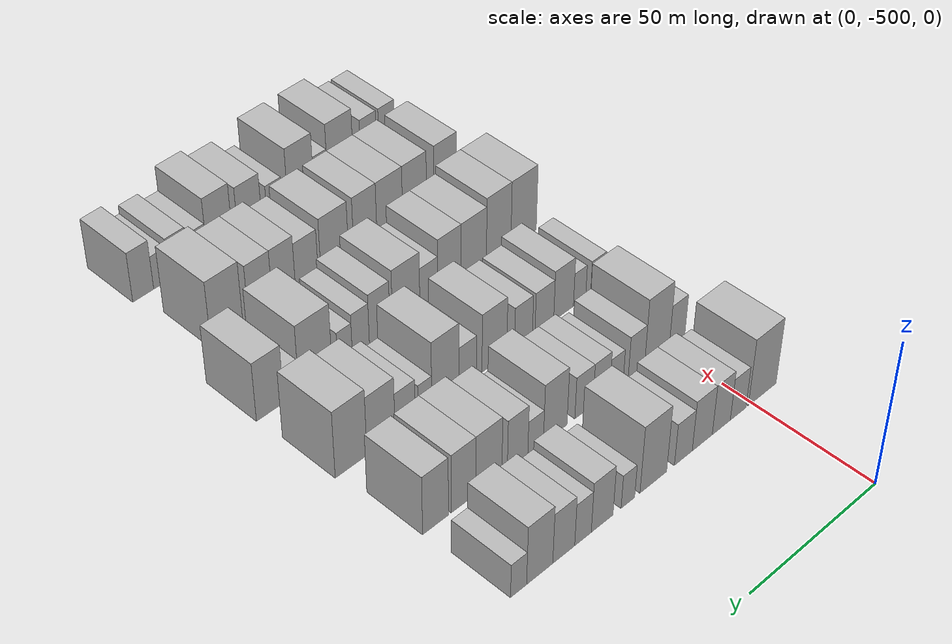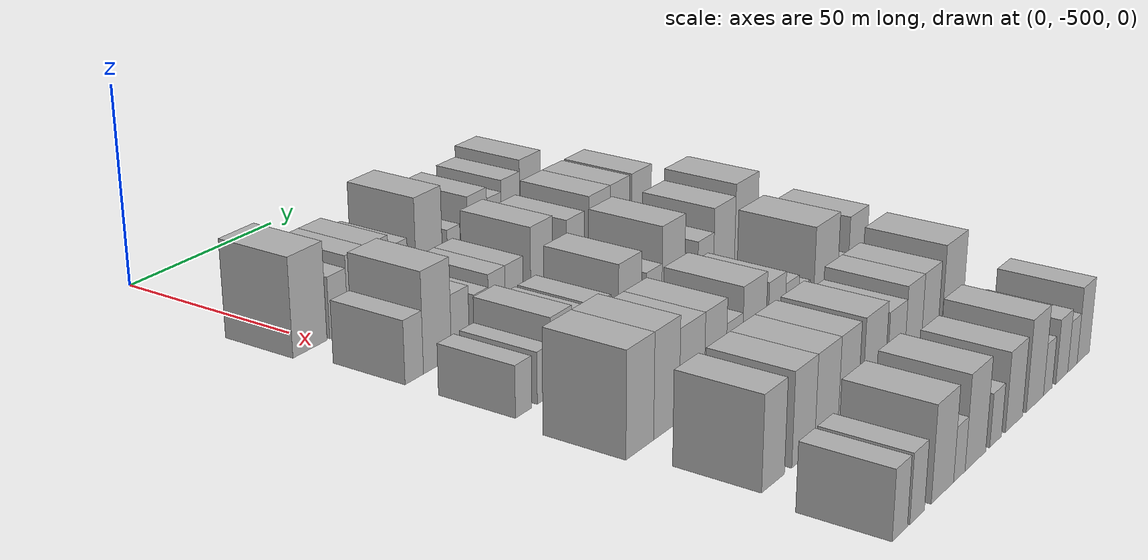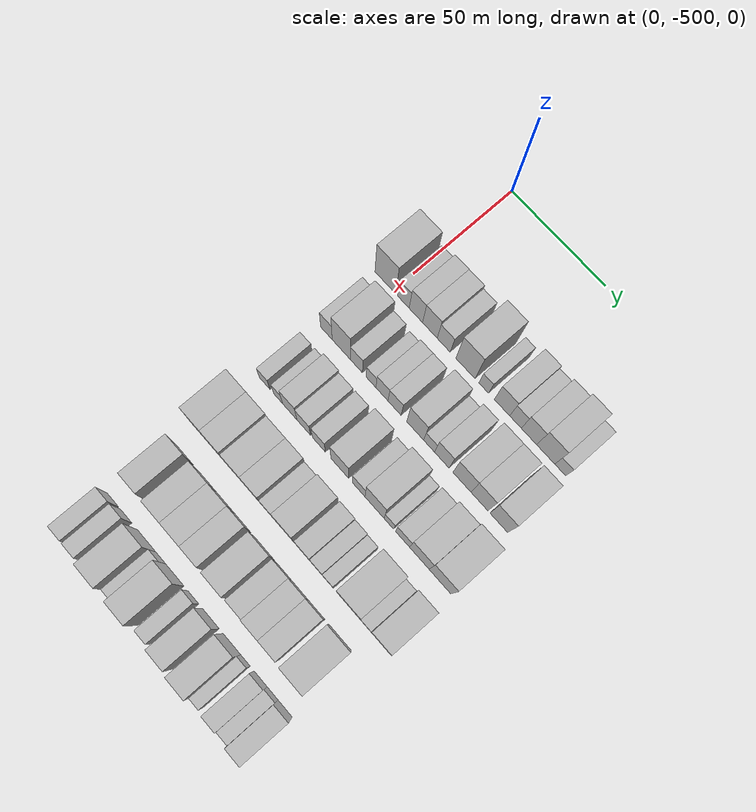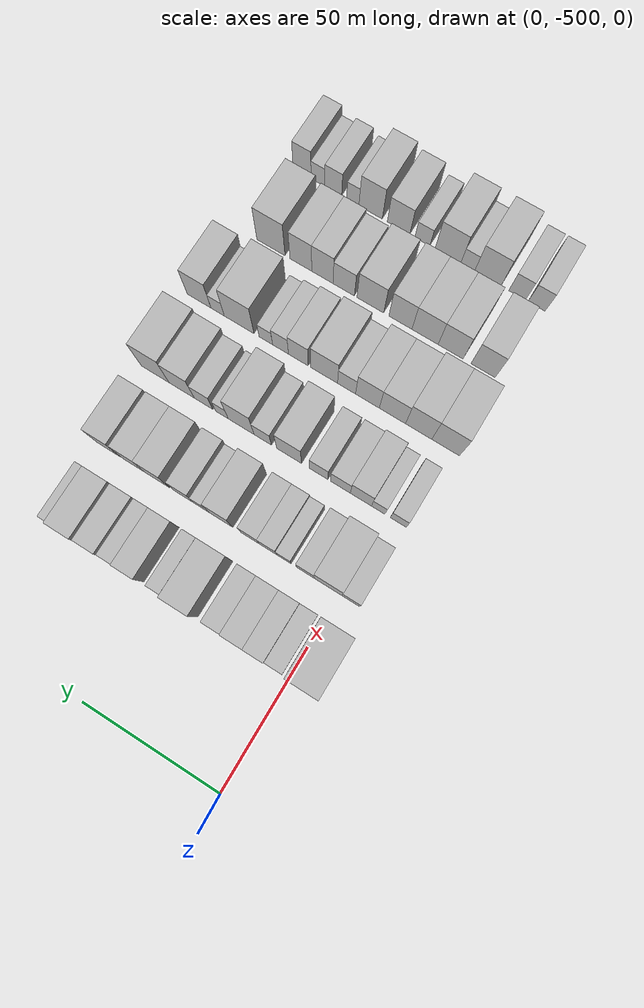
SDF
<sdf version="1.6">
 <world name="default">
  <model name="building_1">
   <static>1</static>
   <pose>50.0000 -504.2611 0 0.000000 0.000000 0.000000</pose>
   <link name="link">
    <pose>0 0 12.00 0 0 0</pose>
    <collision name="collision"><geometry><box><size>20.0000 11.4779 24.0000</size></box></geometry></collision>
    <visual name="visual">
     <cast_shadows>0</cast_shadows>
     <geometry><box><size>20.0000 11.4779 24.0000</size></box></geometry>
     <material>
      <script>
       <uri>model://HANNAS_wall/materials/scripts</uri>
       <uri>model://HANNAS_wall/materials/textures</uri>
       <name>vrc/HANNAS_wall</name>
      </script>
     </material>
    </visual>
   </link>
  </model>
  <model name="building_2">
   <static>1</static>
   <pose>50.0000 -494.3358 0 0.000000 0.000000 0.000000</pose>
   <link name="link">
    <pose>0 0 7.50 0 0 0</pose>
    <collision name="collision"><geometry><box><size>20.0000 6.3727 15.0000</size></box></geometry></collision>
    <visual name="visual">
     <cast_shadows>0</cast_shadows>
     <geometry><box><size>20.0000 6.3727 15.0000</size></box></geometry>
     <material>
      <script>
       <uri>model://HANNAS_wall/materials/scripts</uri>
       <uri>model://HANNAS_wall/materials/textures</uri>
       <name>vrc/HANNAS_wall</name>
      </script>
     </material>
    </visual>
   </link>
  </model>
  <model name="building_3">
   <static>1</static>
   <pose>50.0000 -487.5108 0 0.000000 0.000000 0.000000</pose>
   <link name="link">
    <pose>0 0 9.00 0 0 0</pose>
    <collision name="collision"><geometry><box><size>20.0000 7.2772 18.0000</size></box></geometry></collision>
    <visual name="visual">
     <cast_shadows>0</cast_shadows>
     <geometry><box><size>20.0000 7.2772 18.0000</size></box></geometry>
     <material>
      <script>
       <uri>model://HANNAS_wall/materials/scripts</uri>
       <uri>model://HANNAS_wall/materials/textures</uri>
       <name>vrc/HANNAS_wall</name>
      </script>
     </material>
    </visual>
   </link>
  </model>
  <model name="building_4">
   <static>1</static>
   <pose>50.0000 -479.9016 0 0.000000 0.000000 0.000000</pose>
   <link name="link">
    <pose>0 0 9.00 0 0 0</pose>
    <collision name="collision"><geometry><box><size>20.0000 7.9412 18.0000</size></box></geometry></collision>
    <visual name="visual">
     <cast_shadows>0</cast_shadows>
     <geometry><box><size>20.0000 7.9412 18.0000</size></box></geometry>
     <material>
      <script>
       <uri>model://HANNAS_wall/materials/scripts</uri>
       <uri>model://HANNAS_wall/materials/textures</uri>
       <name>vrc/HANNAS_wall</name>
      </script>
     </material>
    </visual>
   </link>
  </model>
  <model name="building_5">
   <static>1</static>
   <pose>50.0000 -472.4386 0 0.000000 0.000000 0.000000</pose>
   <link name="link">
    <pose>0 0 7.50 0 0 0</pose>
    <collision name="collision"><geometry><box><size>20.0000 6.9848 15.0000</size></box></geometry></collision>
    <visual name="visual">
     <cast_shadows>0</cast_shadows>
     <geometry><box><size>20.0000 6.9848 15.0000</size></box></geometry>
     <material>
      <script>
       <uri>model://HANNAS_wall/materials/scripts</uri>
       <uri>model://HANNAS_wall/materials/textures</uri>
       <name>vrc/HANNAS_wall</name>
      </script>
     </material>
    </visual>
   </link>
  </model>
  <model name="building_6">
   <static>1</static>
   <pose>50.0000 -460.8324 0 0.000000 0.000000 0.000000</pose>
   <link name="link">
    <pose>0 0 12.00 0 0 0</pose>
    <collision name="collision"><geometry><box><size>20.0000 10.2276 24.0000</size></box></geometry></collision>
    <visual name="visual">
     <cast_shadows>0</cast_shadows>
     <geometry><box><size>20.0000 10.2276 24.0000</size></box></geometry>
     <material>
      <script>
       <uri>model://HANNAS_wall/materials/scripts</uri>
       <uri>model://HANNAS_wall/materials/textures</uri>
       <name>vrc/HANNAS_wall</name>
      </script>
     </material>
    </visual>
   </link>
  </model>
  <model name="building_7">
   <static>1</static>
   <pose>50.0000 -451.1623 0 0.000000 0.000000 0.000000</pose>
   <link name="link">
    <pose>0 0 6.00 0 0 0</pose>
    <collision name="collision"><geometry><box><size>20.0000 5.1126 12.0000</size></box></geometry></collision>
    <visual name="visual">
     <cast_shadows>0</cast_shadows>
     <geometry><box><size>20.0000 5.1126 12.0000</size></box></geometry>
     <material>
      <script>
       <uri>model://HANNAS_wall/materials/scripts</uri>
       <uri>model://HANNAS_wall/materials/textures</uri>
       <name>vrc/HANNAS_wall</name>
      </script>
     </material>
    </visual>
   </link>
  </model>
  <model name="building_8">
   <static>1</static>
   <pose>50.0000 -441.5834 0 0.000000 0.000000 0.000000</pose>
   <link name="link">
    <pose>0 0 9.00 0 0 0</pose>
    <collision name="collision"><geometry><box><size>20.0000 8.0451 18.0000</size></box></geometry></collision>
    <visual name="visual">
     <cast_shadows>0</cast_shadows>
     <geometry><box><size>20.0000 8.0451 18.0000</size></box></geometry>
     <material>
      <script>
       <uri>model://HANNAS_wall/materials/scripts</uri>
       <uri>model://HANNAS_wall/materials/textures</uri>
       <name>vrc/HANNAS_wall</name>
      </script>
     </material>
    </visual>
   </link>
  </model>
  <model name="building_9">
   <static>1</static>
   <pose>50.0000 -434.5429 0 0.000000 0.000000 0.000000</pose>
   <link name="link">
    <pose>0 0 7.50 0 0 0</pose>
    <collision name="collision"><geometry><box><size>20.0000 6.0360 15.0000</size></box></geometry></collision>
    <visual name="visual">
     <cast_shadows>0</cast_shadows>
     <geometry><box><size>20.0000 6.0360 15.0000</size></box></geometry>
     <material>
      <script>
       <uri>model://HANNAS_wall/materials/scripts</uri>
       <uri>model://HANNAS_wall/materials/textures</uri>
       <name>vrc/HANNAS_wall</name>
      </script>
     </material>
    </visual>
   </link>
  </model>
  <model name="building_10">
   <static>1</static>
   <pose>50.0000 -427.5865 0 0.000000 0.000000 0.000000</pose>
   <link name="link">
    <pose>0 0 9.00 0 0 0</pose>
    <collision name="collision"><geometry><box><size>20.0000 7.8767 18.0000</size></box></geometry></collision>
    <visual name="visual">
     <cast_shadows>0</cast_shadows>
     <geometry><box><size>20.0000 7.8767 18.0000</size></box></geometry>
     <material>
      <script>
       <uri>model://HANNAS_wall/materials/scripts</uri>
       <uri>model://HANNAS_wall/materials/textures</uri>
       <name>vrc/HANNAS_wall</name>
      </script>
     </material>
    </visual>
   </link>
  </model>
  <model name="building_11">
   <static>1</static>
   <pose>50.0000 -419.0270 0 0.000000 0.000000 0.000000</pose>
   <link name="link">
    <pose>0 0 10.50 0 0 0</pose>
    <collision name="collision"><geometry><box><size>20.0000 9.2422 21.0000</size></box></geometry></collision>
    <visual name="visual">
     <cast_shadows>0</cast_shadows>
     <geometry><box><size>20.0000 9.2422 21.0000</size></box></geometry>
     <material>
      <script>
       <uri>model://HANNAS_wall/materials/scripts</uri>
       <uri>model://HANNAS_wall/materials/textures</uri>
       <name>vrc/HANNAS_wall</name>
      </script>
     </material>
    </visual>
   </link>
  </model>
  <model name="building_12">
   <static>1</static>
   <pose>50.0000 -411.6132 0 0.000000 0.000000 0.000000</pose>
   <link name="link">
    <pose>0 0 6.00 0 0 0</pose>
    <collision name="collision"><geometry><box><size>20.0000 5.5854 12.0000</size></box></geometry></collision>
    <visual name="visual">
     <cast_shadows>0</cast_shadows>
     <geometry><box><size>20.0000 5.5854 12.0000</size></box></geometry>
     <material>
      <script>
       <uri>model://HANNAS_wall/materials/scripts</uri>
       <uri>model://HANNAS_wall/materials/textures</uri>
       <name>vrc/HANNAS_wall</name>
      </script>
     </material>
    </visual>
   </link>
  </model>
  <model name="building_120">
   <static>1</static>
   <pose>79.0000 -503.7935 0 0.000000 0.000000 0.000000</pose>
   <link name="link">
    <pose>0 0 7.50 0 0 0</pose>
    <collision name="collision"><geometry><box><size>20.0000 6.4129 15.0000</size></box></geometry></collision>
    <visual name="visual">
     <cast_shadows>0</cast_shadows>
     <geometry><box><size>20.0000 6.4129 15.0000</size></box></geometry>
     <material>
      <script>
       <uri>model://HANNAS_wall/materials/scripts</uri>
       <uri>model://HANNAS_wall/materials/textures</uri>
       <name>vrc/HANNAS_wall</name>
      </script>
     </material>
    </visual>
   </link>
  </model>
  <model name="building_121">
   <static>1</static>
   <pose>79.0000 -495.5672 0 0.000000 0.000000 0.000000</pose>
   <link name="link">
    <pose>0 0 12.00 0 0 0</pose>
    <collision name="collision"><geometry><box><size>20.0000 10.0397 24.0000</size></box></geometry></collision>
    <visual name="visual">
     <cast_shadows>0</cast_shadows>
     <geometry><box><size>20.0000 10.0397 24.0000</size></box></geometry>
     <material>
      <script>
       <uri>model://HANNAS_wall/materials/scripts</uri>
       <uri>model://HANNAS_wall/materials/textures</uri>
       <name>vrc/HANNAS_wall</name>
      </script>
     </material>
    </visual>
   </link>
  </model>
  <model name="building_122">
   <static>1</static>
   <pose>79.0000 -487.2690 0 0.000000 0.000000 0.000000</pose>
   <link name="link">
    <pose>0 0 7.50 0 0 0</pose>
    <collision name="collision"><geometry><box><size>20.0000 6.5568 15.0000</size></box></geometry></collision>
    <visual name="visual">
     <cast_shadows>0</cast_shadows>
     <geometry><box><size>20.0000 6.5568 15.0000</size></box></geometry>
     <material>
      <script>
       <uri>model://HANNAS_wall/materials/scripts</uri>
       <uri>model://HANNAS_wall/materials/textures</uri>
       <name>vrc/HANNAS_wall</name>
      </script>
     </material>
    </visual>
   </link>
  </model>
  <model name="building_123">
   <static>1</static>
   <pose>79.0000 -479.3188 0 0.000000 0.000000 0.000000</pose>
   <link name="link">
    <pose>0 0 6.00 0 0 0</pose>
    <collision name="collision"><geometry><box><size>20.0000 5.3437 12.0000</size></box></geometry></collision>
    <visual name="visual">
     <cast_shadows>0</cast_shadows>
     <geometry><box><size>20.0000 5.3437 12.0000</size></box></geometry>
     <material>
      <script>
       <uri>model://HANNAS_wall/materials/scripts</uri>
       <uri>model://HANNAS_wall/materials/textures</uri>
       <name>vrc/HANNAS_wall</name>
      </script>
     </material>
    </visual>
   </link>
  </model>
  <model name="building_124">
   <static>1</static>
   <pose>79.0000 -473.3937 0 0.000000 0.000000 0.000000</pose>
   <link name="link">
    <pose>0 0 7.50 0 0 0</pose>
    <collision name="collision"><geometry><box><size>20.0000 6.5066 15.0000</size></box></geometry></collision>
    <visual name="visual">
     <cast_shadows>0</cast_shadows>
     <geometry><box><size>20.0000 6.5066 15.0000</size></box></geometry>
     <material>
      <script>
       <uri>model://HANNAS_wall/materials/scripts</uri>
       <uri>model://HANNAS_wall/materials/textures</uri>
       <name>vrc/HANNAS_wall</name>
      </script>
     </material>
    </visual>
   </link>
  </model>
  <model name="building_125">
   <static>1</static>
   <pose>79.0000 -466.6389 0 0.000000 0.000000 0.000000</pose>
   <link name="link">
    <pose>0 0 7.50 0 0 0</pose>
    <collision name="collision"><geometry><box><size>20.0000 7.0029 15.0000</size></box></geometry></collision>
    <visual name="visual">
     <cast_shadows>0</cast_shadows>
     <geometry><box><size>20.0000 7.0029 15.0000</size></box></geometry>
     <material>
      <script>
       <uri>model://HANNAS_wall/materials/scripts</uri>
       <uri>model://HANNAS_wall/materials/textures</uri>
       <name>vrc/HANNAS_wall</name>
      </script>
     </material>
    </visual>
   </link>
  </model>
  <model name="building_126">
   <static>1</static>
   <pose>79.0000 -455.6709 0 0.000000 0.000000 0.000000</pose>
   <link name="link">
    <pose>0 0 10.50 0 0 0</pose>
    <collision name="collision"><geometry><box><size>20.0000 8.9331 21.0000</size></box></geometry></collision>
    <visual name="visual">
     <cast_shadows>0</cast_shadows>
     <geometry><box><size>20.0000 8.9331 21.0000</size></box></geometry>
     <material>
      <script>
       <uri>model://HANNAS_wall/materials/scripts</uri>
       <uri>model://HANNAS_wall/materials/textures</uri>
       <name>vrc/HANNAS_wall</name>
      </script>
     </material>
    </visual>
   </link>
  </model>
  <model name="building_127">
   <static>1</static>
   <pose>79.0000 -448.3050 0 0.000000 0.000000 0.000000</pose>
   <link name="link">
    <pose>0 0 6.00 0 0 0</pose>
    <collision name="collision"><geometry><box><size>20.0000 5.7987 12.0000</size></box></geometry></collision>
    <visual name="visual">
     <cast_shadows>0</cast_shadows>
     <geometry><box><size>20.0000 5.7987 12.0000</size></box></geometry>
     <material>
      <script>
       <uri>model://HANNAS_wall/materials/scripts</uri>
       <uri>model://HANNAS_wall/materials/textures</uri>
       <name>vrc/HANNAS_wall</name>
      </script>
     </material>
    </visual>
   </link>
  </model>
  <model name="building_128">
   <static>1</static>
   <pose>79.0000 -441.6276 0 0.000000 0.000000 0.000000</pose>
   <link name="link">
    <pose>0 0 9.00 0 0 0</pose>
    <collision name="collision"><geometry><box><size>20.0000 7.5559 18.0000</size></box></geometry></collision>
    <visual name="visual">
     <cast_shadows>0</cast_shadows>
     <geometry><box><size>20.0000 7.5559 18.0000</size></box></geometry>
     <material>
      <script>
       <uri>model://HANNAS_wall/materials/scripts</uri>
       <uri>model://HANNAS_wall/materials/textures</uri>
       <name>vrc/HANNAS_wall</name>
      </script>
     </material>
    </visual>
   </link>
  </model>
  <model name="building_129">
   <static>1</static>
   <pose>79.0000 -431.1558 0 0.000000 0.000000 0.000000</pose>
   <link name="link">
    <pose>0 0 10.50 0 0 0</pose>
    <collision name="collision"><geometry><box><size>20.0000 9.3876 21.0000</size></box></geometry></collision>
    <visual name="visual">
     <cast_shadows>0</cast_shadows>
     <geometry><box><size>20.0000 9.3876 21.0000</size></box></geometry>
     <material>
      <script>
       <uri>model://HANNAS_wall/materials/scripts</uri>
       <uri>model://HANNAS_wall/materials/textures</uri>
       <name>vrc/HANNAS_wall</name>
      </script>
     </material>
    </visual>
   </link>
  </model>
  <model name="building_130">
   <static>1</static>
   <pose>79.0000 -422.1134 0 0.000000 0.000000 0.000000</pose>
   <link name="link">
    <pose>0 0 10.50 0 0 0</pose>
    <collision name="collision"><geometry><box><size>20.0000 8.6972 21.0000</size></box></geometry></collision>
    <visual name="visual">
     <cast_shadows>0</cast_shadows>
     <geometry><box><size>20.0000 8.6972 21.0000</size></box></geometry>
     <material>
      <script>
       <uri>model://HANNAS_wall/materials/scripts</uri>
       <uri>model://HANNAS_wall/materials/textures</uri>
       <name>vrc/HANNAS_wall</name>
      </script>
     </material>
    </visual>
   </link>
  </model>
  <model name="building_131">
   <static>1</static>
   <pose>79.0000 -412.2635 0 0.000000 0.000000 0.000000</pose>
   <link name="link">
    <pose>0 0 10.50 0 0 0</pose>
    <collision name="collision"><geometry><box><size>20.0000 9.0027 21.0000</size></box></geometry></collision>
    <visual name="visual">
     <cast_shadows>0</cast_shadows>
     <geometry><box><size>20.0000 9.0027 21.0000</size></box></geometry>
     <material>
      <script>
       <uri>model://HANNAS_wall/materials/scripts</uri>
       <uri>model://HANNAS_wall/materials/textures</uri>
       <name>vrc/HANNAS_wall</name>
      </script>
     </material>
    </visual>
   </link>
  </model>
  <model name="building_235">
   <static>1</static>
   <pose>108.0000 -504.0595 0 0.000000 0.000000 0.000000</pose>
   <link name="link">
    <pose>0 0 6.00 0 0 0</pose>
    <collision name="collision"><geometry><box><size>20.0000 5.8809 12.0000</size></box></geometry></collision>
    <visual name="visual">
     <cast_shadows>0</cast_shadows>
     <geometry><box><size>20.0000 5.8809 12.0000</size></box></geometry>
     <material>
      <script>
       <uri>model://HANNAS_wall/materials/scripts</uri>
       <uri>model://HANNAS_wall/materials/textures</uri>
       <name>vrc/HANNAS_wall</name>
      </script>
     </material>
    </visual>
   </link>
  </model>
  <model name="building_236">
   <static>1</static>
   <pose>108.0000 -496.6172 0 0.000000 0.000000 0.000000</pose>
   <link name="link">
    <pose>0 0 6.00 0 0 0</pose>
    <collision name="collision"><geometry><box><size>20.0000 5.0037 12.0000</size></box></geometry></collision>
    <visual name="visual">
     <cast_shadows>0</cast_shadows>
     <geometry><box><size>20.0000 5.0037 12.0000</size></box></geometry>
     <material>
      <script>
       <uri>model://HANNAS_wall/materials/scripts</uri>
       <uri>model://HANNAS_wall/materials/textures</uri>
       <name>vrc/HANNAS_wall</name>
      </script>
     </material>
    </visual>
   </link>
  </model>
  <model name="building_237">
   <static>1</static>
   <pose>108.0000 -490.1476 0 0.000000 0.000000 0.000000</pose>
   <link name="link">
    <pose>0 0 9.00 0 0 0</pose>
    <collision name="collision"><geometry><box><size>20.0000 7.9355 18.0000</size></box></geometry></collision>
    <visual name="visual">
     <cast_shadows>0</cast_shadows>
     <geometry><box><size>20.0000 7.9355 18.0000</size></box></geometry>
     <material>
      <script>
       <uri>model://HANNAS_wall/materials/scripts</uri>
       <uri>model://HANNAS_wall/materials/textures</uri>
       <name>vrc/HANNAS_wall</name>
      </script>
     </material>
    </visual>
   </link>
  </model>
  <model name="building_238">
   <static>1</static>
   <pose>108.0000 -482.4728 0 0.000000 0.000000 0.000000</pose>
   <link name="link">
    <pose>0 0 7.50 0 0 0</pose>
    <collision name="collision"><geometry><box><size>20.0000 7.4142 15.0000</size></box></geometry></collision>
    <visual name="visual">
     <cast_shadows>0</cast_shadows>
     <geometry><box><size>20.0000 7.4142 15.0000</size></box></geometry>
     <material>
      <script>
       <uri>model://HANNAS_wall/materials/scripts</uri>
       <uri>model://HANNAS_wall/materials/textures</uri>
       <name>vrc/HANNAS_wall</name>
      </script>
     </material>
    </visual>
   </link>
  </model>
  <model name="building_239">
   <static>1</static>
   <pose>108.0000 -474.2795 0 0.000000 0.000000 0.000000</pose>
   <link name="link">
    <pose>0 0 7.50 0 0 0</pose>
    <collision name="collision"><geometry><box><size>20.0000 6.9724 15.0000</size></box></geometry></collision>
    <visual name="visual">
     <cast_shadows>0</cast_shadows>
     <geometry><box><size>20.0000 6.9724 15.0000</size></box></geometry>
     <material>
      <script>
       <uri>model://HANNAS_wall/materials/scripts</uri>
       <uri>model://HANNAS_wall/materials/textures</uri>
       <name>vrc/HANNAS_wall</name>
      </script>
     </material>
    </visual>
   </link>
  </model>
  <model name="building_240">
   <static>1</static>
   <pose>108.0000 -463.0405 0 0.000000 0.000000 0.000000</pose>
   <link name="link">
    <pose>0 0 10.50 0 0 0</pose>
    <collision name="collision"><geometry><box><size>20.0000 9.5055 21.0000</size></box></geometry></collision>
    <visual name="visual">
     <cast_shadows>0</cast_shadows>
     <geometry><box><size>20.0000 9.5055 21.0000</size></box></geometry>
     <material>
      <script>
       <uri>model://HANNAS_wall/materials/scripts</uri>
       <uri>model://HANNAS_wall/materials/textures</uri>
       <name>vrc/HANNAS_wall</name>
      </script>
     </material>
    </visual>
   </link>
  </model>
  <model name="building_241">
   <static>1</static>
   <pose>108.0000 -452.9401 0 0.000000 0.000000 0.000000</pose>
   <link name="link">
    <pose>0 0 7.50 0 0 0</pose>
    <collision name="collision"><geometry><box><size>20.0000 6.6953 15.0000</size></box></geometry></collision>
    <visual name="visual">
     <cast_shadows>0</cast_shadows>
     <geometry><box><size>20.0000 6.6953 15.0000</size></box></geometry>
     <material>
      <script>
       <uri>model://HANNAS_wall/materials/scripts</uri>
       <uri>model://HANNAS_wall/materials/textures</uri>
       <name>vrc/HANNAS_wall</name>
      </script>
     </material>
    </visual>
   </link>
  </model>
  <model name="building_242">
   <static>1</static>
   <pose>108.0000 -444.5970 0 0.000000 0.000000 0.000000</pose>
   <link name="link">
    <pose>0 0 12.00 0 0 0</pose>
    <collision name="collision"><geometry><box><size>20.0000 9.9908 24.0000</size></box></geometry></collision>
    <visual name="visual">
     <cast_shadows>0</cast_shadows>
     <geometry><box><size>20.0000 9.9908 24.0000</size></box></geometry>
     <material>
      <script>
       <uri>model://HANNAS_wall/materials/scripts</uri>
       <uri>model://HANNAS_wall/materials/textures</uri>
       <name>vrc/HANNAS_wall</name>
      </script>
     </material>
    </visual>
   </link>
  </model>
  <model name="building_243">
   <static>1</static>
   <pose>108.0000 -437.1134 0 0.000000 0.000000 0.000000</pose>
   <link name="link">
    <pose>0 0 6.00 0 0 0</pose>
    <collision name="collision"><geometry><box><size>20.0000 4.9763 12.0000</size></box></geometry></collision>
    <visual name="visual">
     <cast_shadows>0</cast_shadows>
     <geometry><box><size>20.0000 4.9763 12.0000</size></box></geometry>
     <material>
      <script>
       <uri>model://HANNAS_wall/materials/scripts</uri>
       <uri>model://HANNAS_wall/materials/textures</uri>
       <name>vrc/HANNAS_wall</name>
      </script>
     </material>
    </visual>
   </link>
  </model>
  <model name="building_244">
   <static>1</static>
   <pose>108.0000 -429.9712 0 0.000000 0.000000 0.000000</pose>
   <link name="link">
    <pose>0 0 7.50 0 0 0</pose>
    <collision name="collision"><geometry><box><size>20.0000 7.3081 15.0000</size></box></geometry></collision>
    <visual name="visual">
     <cast_shadows>0</cast_shadows>
     <geometry><box><size>20.0000 7.3081 15.0000</size></box></geometry>
     <material>
      <script>
       <uri>model://HANNAS_wall/materials/scripts</uri>
       <uri>model://HANNAS_wall/materials/textures</uri>
       <name>vrc/HANNAS_wall</name>
      </script>
     </material>
    </visual>
   </link>
  </model>
  <model name="building_245">
   <static>1</static>
   <pose>108.0000 -421.3184 0 0.000000 0.000000 0.000000</pose>
   <link name="link">
    <pose>0 0 10.50 0 0 0</pose>
    <collision name="collision"><geometry><box><size>20.0000 9.9977 21.0000</size></box></geometry></collision>
    <visual name="visual">
     <cast_shadows>0</cast_shadows>
     <geometry><box><size>20.0000 9.9977 21.0000</size></box></geometry>
     <material>
      <script>
       <uri>model://HANNAS_wall/materials/scripts</uri>
       <uri>model://HANNAS_wall/materials/textures</uri>
       <name>vrc/HANNAS_wall</name>
      </script>
     </material>
    </visual>
   </link>
  </model>
  <model name="building_246">
   <static>1</static>
   <pose>108.0000 -410.8079 0 0.000000 0.000000 0.000000</pose>
   <link name="link">
    <pose>0 0 12.00 0 0 0</pose>
    <collision name="collision"><geometry><box><size>20.0000 11.0233 24.0000</size></box></geometry></collision>
    <visual name="visual">
     <cast_shadows>0</cast_shadows>
     <geometry><box><size>20.0000 11.0233 24.0000</size></box></geometry>
     <material>
      <script>
       <uri>model://HANNAS_wall/materials/scripts</uri>
       <uri>model://HANNAS_wall/materials/textures</uri>
       <name>vrc/HANNAS_wall</name>
      </script>
     </material>
    </visual>
   </link>
  </model>
  <model name="building_344">
   <static>1</static>
   <pose>137.0000 -504.7951 0 0.000000 0.000000 0.000000</pose>
   <link name="link">
    <pose>0 0 12.00 0 0 0</pose>
    <collision name="collision"><geometry><box><size>20.0000 10.4098 24.0000</size></box></geometry></collision>
    <visual name="visual">
     <cast_shadows>0</cast_shadows>
     <geometry><box><size>20.0000 10.4098 24.0000</size></box></geometry>
     <material>
      <script>
       <uri>model://HANNAS_wall/materials/scripts</uri>
       <uri>model://HANNAS_wall/materials/textures</uri>
       <name>vrc/HANNAS_wall</name>
      </script>
     </material>
    </visual>
   </link>
  </model>
  <model name="building_345">
   <static>1</static>
   <pose>137.0000 -494.6420 0 0.000000 0.000000 0.000000</pose>
   <link name="link">
    <pose>0 0 12.00 0 0 0</pose>
    <collision name="collision"><geometry><box><size>20.0000 9.8966 24.0000</size></box></geometry></collision>
    <visual name="visual">
     <cast_shadows>0</cast_shadows>
     <geometry><box><size>20.0000 9.8966 24.0000</size></box></geometry>
     <material>
      <script>
       <uri>model://HANNAS_wall/materials/scripts</uri>
       <uri>model://HANNAS_wall/materials/textures</uri>
       <name>vrc/HANNAS_wall</name>
      </script>
     </material>
    </visual>
   </link>
  </model>
  <model name="building_346">
   <static>1</static>
   <pose>137.0000 -484.6984 0 0.000000 0.000000 0.000000</pose>
   <link name="link">
    <pose>0 0 10.50 0 0 0</pose>
    <collision name="collision"><geometry><box><size>20.0000 9.9906 21.0000</size></box></geometry></collision>
    <visual name="visual">
     <cast_shadows>0</cast_shadows>
     <geometry><box><size>20.0000 9.9906 21.0000</size></box></geometry>
     <material>
      <script>
       <uri>model://HANNAS_wall/materials/scripts</uri>
       <uri>model://HANNAS_wall/materials/textures</uri>
       <name>vrc/HANNAS_wall</name>
      </script>
     </material>
    </visual>
   </link>
  </model>
  <model name="building_347">
   <static>1</static>
   <pose>137.0000 -475.1652 0 0.000000 0.000000 0.000000</pose>
   <link name="link">
    <pose>0 0 10.50 0 0 0</pose>
    <collision name="collision"><geometry><box><size>20.0000 9.0757 21.0000</size></box></geometry></collision>
    <visual name="visual">
     <cast_shadows>0</cast_shadows>
     <geometry><box><size>20.0000 9.0757 21.0000</size></box></geometry>
     <material>
      <script>
       <uri>model://HANNAS_wall/materials/scripts</uri>
       <uri>model://HANNAS_wall/materials/textures</uri>
       <name>vrc/HANNAS_wall</name>
      </script>
     </material>
    </visual>
   </link>
  </model>
  <model name="building_348">
   <static>1</static>
   <pose>137.0000 -467.1483 0 0.000000 0.000000 0.000000</pose>
   <link name="link">
    <pose>0 0 7.50 0 0 0</pose>
    <collision name="collision"><geometry><box><size>20.0000 6.9582 15.0000</size></box></geometry></collision>
    <visual name="visual">
     <cast_shadows>0</cast_shadows>
     <geometry><box><size>20.0000 6.9582 15.0000</size></box></geometry>
     <material>
      <script>
       <uri>model://HANNAS_wall/materials/scripts</uri>
       <uri>model://HANNAS_wall/materials/textures</uri>
       <name>vrc/HANNAS_wall</name>
      </script>
     </material>
    </visual>
   </link>
  </model>
  <model name="building_349">
   <static>1</static>
   <pose>137.0000 -458.4966 0 0.000000 0.000000 0.000000</pose>
   <link name="link">
    <pose>0 0 10.50 0 0 0</pose>
    <collision name="collision"><geometry><box><size>20.0000 10.3450 21.0000</size></box></geometry></collision>
    <visual name="visual">
     <cast_shadows>0</cast_shadows>
     <geometry><box><size>20.0000 10.3450 21.0000</size></box></geometry>
     <material>
      <script>
       <uri>model://HANNAS_wall/materials/scripts</uri>
       <uri>model://HANNAS_wall/materials/textures</uri>
       <name>vrc/HANNAS_wall</name>
      </script>
     </material>
    </visual>
   </link>
  </model>
  <model name="building_350">
   <static>1</static>
   <pose>137.0000 -448.4822 0 0.000000 0.000000 0.000000</pose>
   <link name="link">
    <pose>0 0 9.00 0 0 0</pose>
    <collision name="collision"><geometry><box><size>20.0000 7.6837 18.0000</size></box></geometry></collision>
    <visual name="visual">
     <cast_shadows>0</cast_shadows>
     <geometry><box><size>20.0000 7.6837 18.0000</size></box></geometry>
     <material>
      <script>
       <uri>model://HANNAS_wall/materials/scripts</uri>
       <uri>model://HANNAS_wall/materials/textures</uri>
       <name>vrc/HANNAS_wall</name>
      </script>
     </material>
    </visual>
   </link>
  </model>
  <model name="building_351">
   <static>1</static>
   <pose>137.0000 -441.5060 0 0.000000 0.000000 0.000000</pose>
   <link name="link">
    <pose>0 0 7.50 0 0 0</pose>
    <collision name="collision"><geometry><box><size>20.0000 6.2688 15.0000</size></box></geometry></collision>
    <visual name="visual">
     <cast_shadows>0</cast_shadows>
     <geometry><box><size>20.0000 6.2688 15.0000</size></box></geometry>
     <material>
      <script>
       <uri>model://HANNAS_wall/materials/scripts</uri>
       <uri>model://HANNAS_wall/materials/textures</uri>
       <name>vrc/HANNAS_wall</name>
      </script>
     </material>
    </visual>
   </link>
  </model>
  <model name="building_352">
   <static>1</static>
   <pose>137.0000 -435.6983 0 0.000000 0.000000 0.000000</pose>
   <link name="link">
    <pose>0 0 6.00 0 0 0</pose>
    <collision name="collision"><geometry><box><size>20.0000 5.3465 12.0000</size></box></geometry></collision>
    <visual name="visual">
     <cast_shadows>0</cast_shadows>
     <geometry><box><size>20.0000 5.3465 12.0000</size></box></geometry>
     <material>
      <script>
       <uri>model://HANNAS_wall/materials/scripts</uri>
       <uri>model://HANNAS_wall/materials/textures</uri>
       <name>vrc/HANNAS_wall</name>
      </script>
     </material>
    </visual>
   </link>
  </model>
  <model name="building_353">
   <static>1</static>
   <pose>137.0000 -425.1049 0 0.000000 0.000000 0.000000</pose>
   <link name="link">
    <pose>0 0 12.00 0 0 0</pose>
    <collision name="collision"><geometry><box><size>20.0000 11.8404 24.0000</size></box></geometry></collision>
    <visual name="visual">
     <cast_shadows>0</cast_shadows>
     <geometry><box><size>20.0000 11.8404 24.0000</size></box></geometry>
     <material>
      <script>
       <uri>model://HANNAS_wall/materials/scripts</uri>
       <uri>model://HANNAS_wall/materials/textures</uri>
       <name>vrc/HANNAS_wall</name>
      </script>
     </material>
    </visual>
   </link>
  </model>
  <model name="building_354">
   <static>1</static>
   <pose>137.0000 -416.5271 0 0.000000 0.000000 0.000000</pose>
   <link name="link">
    <pose>0 0 6.00 0 0 0</pose>
    <collision name="collision"><geometry><box><size>20.0000 5.3152 12.0000</size></box></geometry></collision>
    <visual name="visual">
     <cast_shadows>0</cast_shadows>
     <geometry><box><size>20.0000 5.3152 12.0000</size></box></geometry>
     <material>
      <script>
       <uri>model://HANNAS_wall/materials/scripts</uri>
       <uri>model://HANNAS_wall/materials/textures</uri>
       <name>vrc/HANNAS_wall</name>
      </script>
     </material>
    </visual>
   </link>
  </model>
  <model name="building_355">
   <static>1</static>
   <pose>137.0000 -409.0913 0 0.000000 0.000000 0.000000</pose>
   <link name="link">
    <pose>0 0 10.50 0 0 0</pose>
    <collision name="collision"><geometry><box><size>20.0000 9.5563 21.0000</size></box></geometry></collision>
    <visual name="visual">
     <cast_shadows>0</cast_shadows>
     <geometry><box><size>20.0000 9.5563 21.0000</size></box></geometry>
     <material>
      <script>
       <uri>model://HANNAS_wall/materials/scripts</uri>
       <uri>model://HANNAS_wall/materials/textures</uri>
       <name>vrc/HANNAS_wall</name>
      </script>
     </material>
    </visual>
   </link>
  </model>
  <model name="building_458">
   <static>1</static>
   <pose>166.0000 -502.4079 0 0.000000 0.000000 0.000000</pose>
   <link name="link">
    <pose>0 0 10.50 0 0 0</pose>
    <collision name="collision"><geometry><box><size>20.0000 9.1842 21.0000</size></box></geometry></collision>
    <visual name="visual">
     <cast_shadows>0</cast_shadows>
     <geometry><box><size>20.0000 9.1842 21.0000</size></box></geometry>
     <material>
      <script>
       <uri>model://HANNAS_wall/materials/scripts</uri>
       <uri>model://HANNAS_wall/materials/textures</uri>
       <name>vrc/HANNAS_wall</name>
      </script>
     </material>
    </visual>
   </link>
  </model>
  <model name="building_459">
   <static>1</static>
   <pose>166.0000 -490.0241 0 0.000000 0.000000 0.000000</pose>
   <link name="link">
    <pose>0 0 10.50 0 0 0</pose>
    <collision name="collision"><geometry><box><size>20.0000 9.5833 21.0000</size></box></geometry></collision>
    <visual name="visual">
     <cast_shadows>0</cast_shadows>
     <geometry><box><size>20.0000 9.5833 21.0000</size></box></geometry>
     <material>
      <script>
       <uri>model://HANNAS_wall/materials/scripts</uri>
       <uri>model://HANNAS_wall/materials/textures</uri>
       <name>vrc/HANNAS_wall</name>
      </script>
     </material>
    </visual>
   </link>
  </model>
  <model name="building_460">
   <static>1</static>
   <pose>166.0000 -480.1691 0 0.000000 0.000000 0.000000</pose>
   <link name="link">
    <pose>0 0 10.50 0 0 0</pose>
    <collision name="collision"><geometry><box><size>20.0000 10.1267 21.0000</size></box></geometry></collision>
    <visual name="visual">
     <cast_shadows>0</cast_shadows>
     <geometry><box><size>20.0000 10.1267 21.0000</size></box></geometry>
     <material>
      <script>
       <uri>model://HANNAS_wall/materials/scripts</uri>
       <uri>model://HANNAS_wall/materials/textures</uri>
       <name>vrc/HANNAS_wall</name>
      </script>
     </material>
    </visual>
   </link>
  </model>
  <model name="building_461">
   <static>1</static>
   <pose>166.0000 -470.6169 0 0.000000 0.000000 0.000000</pose>
   <link name="link">
    <pose>0 0 10.50 0 0 0</pose>
    <collision name="collision"><geometry><box><size>20.0000 8.9777 21.0000</size></box></geometry></collision>
    <visual name="visual">
     <cast_shadows>0</cast_shadows>
     <geometry><box><size>20.0000 8.9777 21.0000</size></box></geometry>
     <material>
      <script>
       <uri>model://HANNAS_wall/materials/scripts</uri>
       <uri>model://HANNAS_wall/materials/textures</uri>
       <name>vrc/HANNAS_wall</name>
      </script>
     </material>
    </visual>
   </link>
  </model>
  <model name="building_462">
   <static>1</static>
   <pose>166.0000 -458.8829 0 0.000000 0.000000 0.000000</pose>
   <link name="link">
    <pose>0 0 10.50 0 0 0</pose>
    <collision name="collision"><geometry><box><size>20.0000 10.4903 21.0000</size></box></geometry></collision>
    <visual name="visual">
     <cast_shadows>0</cast_shadows>
     <geometry><box><size>20.0000 10.4903 21.0000</size></box></geometry>
     <material>
      <script>
       <uri>model://HANNAS_wall/materials/scripts</uri>
       <uri>model://HANNAS_wall/materials/textures</uri>
       <name>vrc/HANNAS_wall</name>
      </script>
     </material>
    </visual>
   </link>
  </model>
  <model name="building_463">
   <static>1</static>
   <pose>166.0000 -448.4124 0 0.000000 0.000000 0.000000</pose>
   <link name="link">
    <pose>0 0 9.00 0 0 0</pose>
    <collision name="collision"><geometry><box><size>20.0000 8.4508 18.0000</size></box></geometry></collision>
    <visual name="visual">
     <cast_shadows>0</cast_shadows>
     <geometry><box><size>20.0000 8.4508 18.0000</size></box></geometry>
     <material>
      <script>
       <uri>model://HANNAS_wall/materials/scripts</uri>
       <uri>model://HANNAS_wall/materials/textures</uri>
       <name>vrc/HANNAS_wall</name>
      </script>
     </material>
    </visual>
   </link>
  </model>
  <model name="building_464">
   <static>1</static>
   <pose>166.0000 -439.9575 0 0.000000 0.000000 0.000000</pose>
   <link name="link">
    <pose>0 0 10.50 0 0 0</pose>
    <collision name="collision"><geometry><box><size>20.0000 8.4590 21.0000</size></box></geometry></collision>
    <visual name="visual">
     <cast_shadows>0</cast_shadows>
     <geometry><box><size>20.0000 8.4590 21.0000</size></box></geometry>
     <material>
      <script>
       <uri>model://HANNAS_wall/materials/scripts</uri>
       <uri>model://HANNAS_wall/materials/textures</uri>
       <name>vrc/HANNAS_wall</name>
      </script>
     </material>
    </visual>
   </link>
  </model>
  <model name="building_465">
   <static>1</static>
   <pose>166.0000 -431.3755 0 0.000000 0.000000 0.000000</pose>
   <link name="link">
    <pose>0 0 10.50 0 0 0</pose>
    <collision name="collision"><geometry><box><size>20.0000 8.7050 21.0000</size></box></geometry></collision>
    <visual name="visual">
     <cast_shadows>0</cast_shadows>
     <geometry><box><size>20.0000 8.7050 21.0000</size></box></geometry>
     <material>
      <script>
       <uri>model://HANNAS_wall/materials/scripts</uri>
       <uri>model://HANNAS_wall/materials/textures</uri>
       <name>vrc/HANNAS_wall</name>
      </script>
     </material>
    </visual>
   </link>
  </model>
  <model name="building_466">
   <static>1</static>
   <pose>166.0000 -419.3286 0 0.000000 0.000000 0.000000</pose>
   <link name="link">
    <pose>0 0 12.00 0 0 0</pose>
    <collision name="collision"><geometry><box><size>20.0000 11.3887 24.0000</size></box></geometry></collision>
    <visual name="visual">
     <cast_shadows>0</cast_shadows>
     <geometry><box><size>20.0000 11.3887 24.0000</size></box></geometry>
     <material>
      <script>
       <uri>model://HANNAS_wall/materials/scripts</uri>
       <uri>model://HANNAS_wall/materials/textures</uri>
       <name>vrc/HANNAS_wall</name>
      </script>
     </material>
    </visual>
   </link>
  </model>
  <model name="building_572">
   <static>1</static>
   <pose>195.0000 -506.7416 0 0.000000 0.000000 0.000000</pose>
   <link name="link">
    <pose>0 0 7.50 0 0 0</pose>
    <collision name="collision"><geometry><box><size>20.0000 6.5167 15.0000</size></box></geometry></collision>
    <visual name="visual">
     <cast_shadows>0</cast_shadows>
     <geometry><box><size>20.0000 6.5167 15.0000</size></box></geometry>
     <material>
      <script>
       <uri>model://HANNAS_wall/materials/scripts</uri>
       <uri>model://HANNAS_wall/materials/textures</uri>
       <name>vrc/HANNAS_wall</name>
      </script>
     </material>
    </visual>
   </link>
  </model>
  <model name="building_573">
   <static>1</static>
   <pose>195.0000 -499.2499 0 0.000000 0.000000 0.000000</pose>
   <link name="link">
    <pose>0 0 7.50 0 0 0</pose>
    <collision name="collision"><geometry><box><size>20.0000 6.4669 15.0000</size></box></geometry></collision>
    <visual name="visual">
     <cast_shadows>0</cast_shadows>
     <geometry><box><size>20.0000 6.4669 15.0000</size></box></geometry>
     <material>
      <script>
       <uri>model://HANNAS_wall/materials/scripts</uri>
       <uri>model://HANNAS_wall/materials/textures</uri>
       <name>vrc/HANNAS_wall</name>
      </script>
     </material>
    </visual>
   </link>
  </model>
  <model name="building_574">
   <static>1</static>
   <pose>195.0000 -487.8916 0 0.000000 0.000000 0.000000</pose>
   <link name="link">
    <pose>0 0 10.50 0 0 0</pose>
    <collision name="collision"><geometry><box><size>20.0000 10.2496 21.0000</size></box></geometry></collision>
    <visual name="visual">
     <cast_shadows>0</cast_shadows>
     <geometry><box><size>20.0000 10.2496 21.0000</size></box></geometry>
     <material>
      <script>
       <uri>model://HANNAS_wall/materials/scripts</uri>
       <uri>model://HANNAS_wall/materials/textures</uri>
       <name>vrc/HANNAS_wall</name>
      </script>
     </material>
    </visual>
   </link>
  </model>
  <model name="building_575">
   <static>1</static>
   <pose>195.0000 -480.0510 0 0.000000 0.000000 0.000000</pose>
   <link name="link">
    <pose>0 0 6.00 0 0 0</pose>
    <collision name="collision"><geometry><box><size>20.0000 5.4317 12.0000</size></box></geometry></collision>
    <visual name="visual">
     <cast_shadows>0</cast_shadows>
     <geometry><box><size>20.0000 5.4317 12.0000</size></box></geometry>
     <material>
      <script>
       <uri>model://HANNAS_wall/materials/scripts</uri>
       <uri>model://HANNAS_wall/materials/textures</uri>
       <name>vrc/HANNAS_wall</name>
      </script>
     </material>
    </visual>
   </link>
  </model>
  <model name="building_576">
   <static>1</static>
   <pose>195.0000 -472.2886 0 0.000000 0.000000 0.000000</pose>
   <link name="link">
    <pose>0 0 10.50 0 0 0</pose>
    <collision name="collision"><geometry><box><size>20.0000 10.0930 21.0000</size></box></geometry></collision>
    <visual name="visual">
     <cast_shadows>0</cast_shadows>
     <geometry><box><size>20.0000 10.0930 21.0000</size></box></geometry>
     <material>
      <script>
       <uri>model://HANNAS_wall/materials/scripts</uri>
       <uri>model://HANNAS_wall/materials/textures</uri>
       <name>vrc/HANNAS_wall</name>
      </script>
     </material>
    </visual>
   </link>
  </model>
  <model name="building_577">
   <static>1</static>
   <pose>195.0000 -462.2572 0 0.000000 0.000000 0.000000</pose>
   <link name="link">
    <pose>0 0 6.00 0 0 0</pose>
    <collision name="collision"><geometry><box><size>20.0000 5.9698 12.0000</size></box></geometry></collision>
    <visual name="visual">
     <cast_shadows>0</cast_shadows>
     <geometry><box><size>20.0000 5.9698 12.0000</size></box></geometry>
     <material>
      <script>
       <uri>model://HANNAS_wall/materials/scripts</uri>
       <uri>model://HANNAS_wall/materials/textures</uri>
       <name>vrc/HANNAS_wall</name>
      </script>
     </material>
    </visual>
   </link>
  </model>
  <model name="building_578">
   <static>1</static>
   <pose>195.0000 -452.7874 0 0.000000 0.000000 0.000000</pose>
   <link name="link">
    <pose>0 0 9.00 0 0 0</pose>
    <collision name="collision"><geometry><box><size>20.0000 8.9698 18.0000</size></box></geometry></collision>
    <visual name="visual">
     <cast_shadows>0</cast_shadows>
     <geometry><box><size>20.0000 8.9698 18.0000</size></box></geometry>
     <material>
      <script>
       <uri>model://HANNAS_wall/materials/scripts</uri>
       <uri>model://HANNAS_wall/materials/textures</uri>
       <name>vrc/HANNAS_wall</name>
      </script>
     </material>
    </visual>
   </link>
  </model>
  <model name="building_579">
   <static>1</static>
   <pose>195.0000 -441.5947 0 0.000000 0.000000 0.000000</pose>
   <link name="link">
    <pose>0 0 10.50 0 0 0</pose>
    <collision name="collision"><geometry><box><size>20.0000 9.4156 21.0000</size></box></geometry></collision>
    <visual name="visual">
     <cast_shadows>0</cast_shadows>
     <geometry><box><size>20.0000 9.4156 21.0000</size></box></geometry>
     <material>
      <script>
       <uri>model://HANNAS_wall/materials/scripts</uri>
       <uri>model://HANNAS_wall/materials/textures</uri>
       <name>vrc/HANNAS_wall</name>
      </script>
     </material>
    </visual>
   </link>
  </model>
  <model name="building_580">
   <static>1</static>
   <pose>195.0000 -434.4070 0 0.000000 0.000000 0.000000</pose>
   <link name="link">
    <pose>0 0 6.00 0 0 0</pose>
    <collision name="collision"><geometry><box><size>20.0000 4.9599 12.0000</size></box></geometry></collision>
    <visual name="visual">
     <cast_shadows>0</cast_shadows>
     <geometry><box><size>20.0000 4.9599 12.0000</size></box></geometry>
     <material>
      <script>
       <uri>model://HANNAS_wall/materials/scripts</uri>
       <uri>model://HANNAS_wall/materials/textures</uri>
       <name>vrc/HANNAS_wall</name>
      </script>
     </material>
    </visual>
   </link>
  </model>
  <model name="building_581">
   <static>1</static>
   <pose>195.0000 -426.4791 0 0.000000 0.000000 0.000000</pose>
   <link name="link">
    <pose>0 0 7.50 0 0 0</pose>
    <collision name="collision"><geometry><box><size>20.0000 6.8959 15.0000</size></box></geometry></collision>
    <visual name="visual">
     <cast_shadows>0</cast_shadows>
     <geometry><box><size>20.0000 6.8959 15.0000</size></box></geometry>
     <material>
      <script>
       <uri>model://HANNAS_wall/materials/scripts</uri>
       <uri>model://HANNAS_wall/materials/textures</uri>
       <name>vrc/HANNAS_wall</name>
      </script>
     </material>
    </visual>
   </link>
  </model>
  <model name="building_582">
   <static>1</static>
   <pose>195.0000 -420.2685 0 0.000000 0.000000 0.000000</pose>
   <link name="link">
    <pose>0 0 6.00 0 0 0</pose>
    <collision name="collision"><geometry><box><size>20.0000 5.5254 12.0000</size></box></geometry></collision>
    <visual name="visual">
     <cast_shadows>0</cast_shadows>
     <geometry><box><size>20.0000 5.5254 12.0000</size></box></geometry>
     <material>
      <script>
       <uri>model://HANNAS_wall/materials/scripts</uri>
       <uri>model://HANNAS_wall/materials/textures</uri>
       <name>vrc/HANNAS_wall</name>
      </script>
     </material>
    </visual>
   </link>
  </model>
  <model name="building_583">
   <static>1</static>
   <pose>195.0000 -413.8146 0 0.000000 0.000000 0.000000</pose>
   <link name="link">
    <pose>0 0 9.00 0 0 0</pose>
    <collision name="collision"><geometry><box><size>20.0000 7.3823 18.0000</size></box></geometry></collision>
    <visual name="visual">
     <cast_shadows>0</cast_shadows>
     <geometry><box><size>20.0000 7.3823 18.0000</size></box></geometry>
     <material>
      <script>
       <uri>model://HANNAS_wall/materials/scripts</uri>
       <uri>model://HANNAS_wall/materials/textures</uri>
       <name>vrc/HANNAS_wall</name>
      </script>
     </material>
    </visual>
   </link>
  </model>
 </world>
</sdf>
